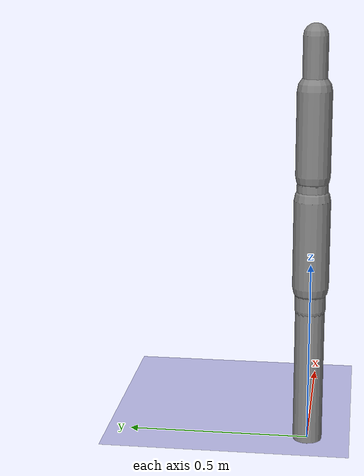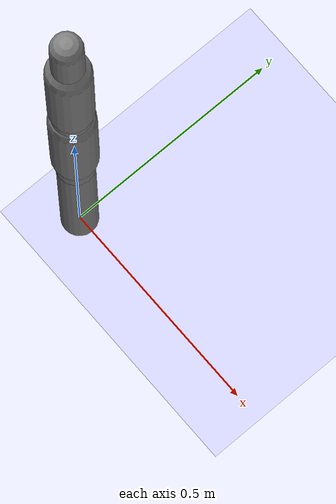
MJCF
<?xml version='1.0' encoding='UTF-8'?>
<mujoco model="robot_model">
  <worldbody>
    <light name="light" pos="0 -3 10" dir="0 0.5 -1" diffuse=".8 .8 .8" specular="0.1 0.1 0.1"/>
    <geom name="floor" type="plane" size="10.0 10.0 0.1" pos="0 0 0" rgba="0.8 0.8 1 1" contype="2" conaffinity="1"/>
    <body name="limb0" pos="0 0 0">
      <geom type="capsule" fromto="0 0 0 0 0 0.4770158134288512" size="0.04" density="1061.5522445288605" contype="1" conaffinity="2"/>
      <site type="sphere" size="0.01" name="limb0_site0" pos="0 0 0.27519406865442514"/>
      <site type="sphere" size="0.01" name="limb0_site1" pos="0 0 0.449208727791045"/>
      <freejoint name="limb0_root"/>
      <body name="limb1" pos="0 0 0.27519406865442514">
        <geom type="capsule" fromto="0 0 0 0 0 0.2639757366326131" size="0.03303782304059255" density="616.6153958948047" contype="1" conaffinity="2"/>
        <site type="sphere" size="0.01" name="limb1_site0" pos="0 0 0.16469519644951955"/>
        <site type="sphere" size="0.01" name="limb1_site1" pos="0 0 0.10105994540977413"/>
        <site type="sphere" size="0.01" name="limb1_site2" pos="0 0 0.2535922209205287"/>
        <body name="limb2" pos="0 0 0.16469519644951955">
          <geom type="capsule" fromto="0 0 0 0 0 0.23785756650714102" size="0.049138871714439904" density="645.8772761445443" contype="1" conaffinity="2"/>
          <joint name="joint_limb1_limb2_0" type="hinge" axis="0 1 0" range="-79.19027832141104 79.19027832141104" damping="5.0"/>
        </body>
        <body name="limb3" pos="0 0 0.10105994540977413">
          <geom type="capsule" fromto="0 0 0 0 0 0.3449366956007403" size="0.04182995516077146" density="888.638751137447" contype="1" conaffinity="2"/>
          <site type="sphere" size="0.01" name="limb3_site0" pos="0 0 0.34476469369601037"/>
          <site type="sphere" size="0.01" name="limb3_site1" pos="0 0 0.22417686865828207"/>
          <body name="limb4" pos="0 0 0.34476469369601037">
            <geom type="capsule" fromto="0 0 0 0 0 0.38689637571819735" size="0.03296585503229504" density="787.6117064878987" contype="1" conaffinity="2"/>
            <joint name="joint_limb3_limb4_0" type="hinge" axis="0 1 0" range="-97.60316524447805 97.60316524447805" damping="5.0"/>
          </body>
          <body name="limb5" pos="0 0 0.22417686865828207">
            <geom type="capsule" fromto="0 0 0 0 0 0.2102868528065015" size="0.03451406520881031" density="566.487314585425" contype="1" conaffinity="2"/>
            <joint name="joint_limb3_limb5_0" type="hinge" axis="0 1 0" range="-97.4408151263812 97.4408151263812" damping="5.0"/>
          </body>
          <joint name="joint_limb1_limb3_0" type="hinge" axis="0 1 0" range="-84.37282476408203 84.37282476408203" damping="5.0"/>
        </body>
        <body name="limb6" pos="0 0 0.2535922209205287">
          <geom type="capsule" fromto="0 0 0 0 0 0.4886525017141072" size="0.02730849030649112" density="1118.1587480940386" contype="1" conaffinity="2"/>
          <site type="sphere" size="0.01" name="limb6_site0" pos="0 0 0.2148602362279738"/>
          <site type="sphere" size="0.01" name="limb6_site1" pos="0 0 0.2502629485534305"/>
          <body name="limb7" pos="0 0 0.2148602362279738">
            <geom type="capsule" fromto="0 0 0 0 0 0.2236606912345691" size="0.046485945346346196" density="1200.0" contype="1" conaffinity="2"/>
            <joint name="joint_limb6_limb7_0" type="hinge" axis="0 0 1" range="-97.3556228309299 97.3556228309299" damping="5.0"/>
          </body>
          <body name="limb8" pos="0 0 0.2502629485534305">
            <geom type="capsule" fromto="0 0 0 0 0 0.1797215636428" size="0.026091798513952557" density="745.8119714770129" contype="1" conaffinity="2"/>
            <joint name="joint_limb6_limb8_0" type="hinge" axis="1 0 0" range="-42.15190616583611 42.15190616583611" damping="5.0"/>
          </body>
          <joint name="joint_limb1_limb6_0" type="hinge" axis="0 1 0" range="-80.38696577407528 80.38696577407528" damping="5.0"/>
        </body>
        <joint name="joint_limb0_limb1_0" type="hinge" axis="0 1 0" range="-80.93464502128651 80.93464502128651" damping="5.0"/>
      </body>
      <body name="limb9" pos="0 0 0.449208727791045">
        <geom type="capsule" fromto="0 0 0 0 0 0.12459660118477343" size="0.048030699364997174" density="1200.0" contype="1" conaffinity="2"/>
        <joint name="joint_limb0_limb9_0" type="hinge" axis="0 1 0" range="-46.186401585393725 46.186401585393725" damping="5.0"/>
      </body>
    </body>
  </worldbody>
  <actuator>
    <position name="position_actuator_joint_limb0_limb1_0" joint="joint_limb0_limb1_0" gear="0.9284005325474602" inheritrange="1" kp="10.0"/>
    <position name="position_actuator_joint_limb1_limb2_0" joint="joint_limb1_limb2_0" gear="1.0104857860709995" inheritrange="1" kp="10.0"/>
    <position name="position_actuator_joint_limb1_limb3_0" joint="joint_limb1_limb3_0" gear="2.0" inheritrange="1" kp="10.0"/>
    <position name="position_actuator_joint_limb3_limb4_0" joint="joint_limb3_limb4_0" gear="1.7459471619076385" inheritrange="1" kp="10.0"/>
    <position name="position_actuator_joint_limb3_limb5_0" joint="joint_limb3_limb5_0" gear="0.9592737602053503" inheritrange="1" kp="10.0"/>
    <position name="position_actuator_joint_limb1_limb6_0" joint="joint_limb1_limb6_0" gear="1.272740550353963" inheritrange="1" kp="10.0"/>
    <position name="position_actuator_joint_limb6_limb7_0" joint="joint_limb6_limb7_0" gear="1.2514069354827302" inheritrange="1" kp="10.0"/>
    <position name="position_actuator_joint_limb6_limb8_0" joint="joint_limb6_limb8_0" gear="1.5515760021784972" inheritrange="1" kp="10.0"/>
    <position name="position_actuator_joint_limb0_limb9_0" joint="joint_limb0_limb9_0" gear="0.5181521235082891" inheritrange="1" kp="10.0"/>
  </actuator>
</mujoco>
